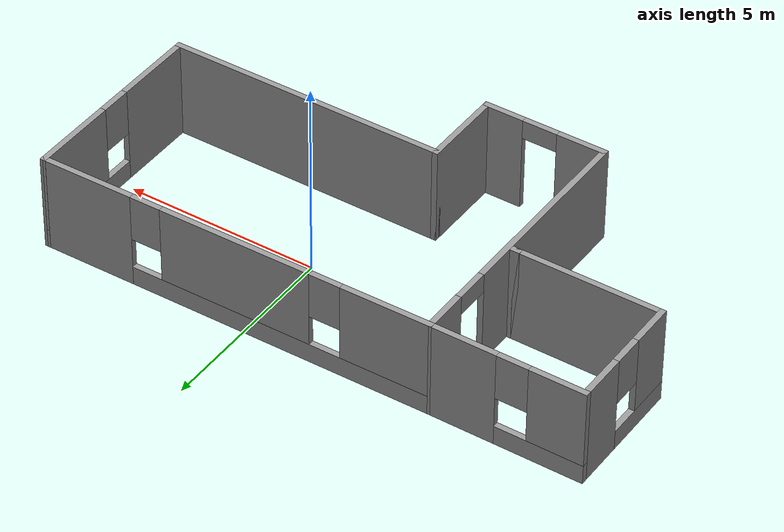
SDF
<?xml version='1.0'?>
<sdf version='1.6'>
  <model name='House'>
    <pose frame=''>-1.63925 -0.947447 0 0 -0 0</pose>
    <link name='Wall_10'>
      <collision name='Wall_10_Collision'>
        <geometry>
          <box>
            <size>2.25 0.15 2.5</size>
          </box>
        </geometry>
        <pose frame=''>0 0 1.25 0 -0 0</pose>
      </collision>
      <visual name='Wall_10_Visual'>
        <pose frame=''>0 0 1.25 0 -0 0</pose>
        <geometry>
          <box>
            <size>2.25 0.15 2.5</size>
          </box>
        </geometry>
        <material>
          <script>
            <uri>file://media/materials/scripts/gazebo.material</uri>
            <name>Gazebo/Grey</name>
          </script>
          <ambient>1 1 1 1</ambient>
        </material>
        <meta>
          <layer>0</layer>
        </meta>
      </visual>
      <pose frame=''>-0.075367 -2.55037 0 0 -0 1.5708</pose>
    </link>
    <link name='Wall_11'>
      <collision name='Wall_11_Collision'>
        <geometry>
          <box>
            <size>7.25 0.15 2.5</size>
          </box>
        </geometry>
        <pose frame=''>0 0 1.25 0 -0 0</pose>
      </collision>
      <visual name='Wall_11_Visual'>
        <pose frame=''>0 0 1.25 0 -0 0</pose>
        <geometry>
          <box>
            <size>7.25 0.15 2.5</size>
          </box>
        </geometry>
        <material>
          <script>
            <uri>file://media/materials/scripts/gazebo.material</uri>
            <name>Gazebo/Grey</name>
          </script>
          <ambient>1 1 1 1</ambient>
        </material>
        <meta>
          <layer>0</layer>
        </meta>
      </visual>
      <pose frame=''>3.47463 -1.50037 0 0 -0 0</pose>
    </link>
    <link name='Wall_12'>
      <pose frame=''>7.02463 1.04963 0 0 -0 1.5708</pose>
      <visual name='Wall_12_Visual_0'>
        <pose frame=''>-1.51989 0 1.25 0 -0 0</pose>
        <geometry>
          <box>
            <size>2.21023 0.15 2.5</size>
          </box>
        </geometry>
        <material>
          <script>
            <uri>file://media/materials/scripts/gazebo.material</uri>
            <name>Gazebo/Grey</name>
          </script>
          <ambient>1 1 1 1</ambient>
        </material>
        <meta>
          <layer>0</layer>
        </meta>
      </visual>
      <collision name='Wall_12_Collision_0'>
        <geometry>
          <box>
            <size>2.21023 0.15 2.5</size>
          </box>
        </geometry>
        <pose frame=''>-1.51989 0 1.25 0 -0 0</pose>
      </collision>
      <visual name='Wall_12_Visual_1'>
        <pose frame=''>1.10511 0 0.25 0 -0 0</pose>
        <geometry>
          <box>
            <size>3.03977 0.15 0.5</size>
          </box>
        </geometry>
        <material>
          <script>
            <uri>file://media/materials/scripts/gazebo.material</uri>
            <name>Gazebo/Grey</name>
          </script>
          <ambient>1 1 1 1</ambient>
        </material>
        <meta>
          <layer>0</layer>
        </meta>
      </visual>
      <collision name='Wall_12_Collision_1'>
        <geometry>
          <box>
            <size>3.03977 0.15 0.5</size>
          </box>
        </geometry>
        <pose frame=''>1.10511 0 0.25 0 -0 0</pose>
      </collision>
      <visual name='Wall_12_Visual_2'>
        <pose frame=''>1.50511 0 1.5 0 -0 0</pose>
        <geometry>
          <box>
            <size>2.23977 0.15 2</size>
          </box>
        </geometry>
        <material>
          <script>
            <uri>file://media/materials/scripts/gazebo.material</uri>
            <name>Gazebo/Grey</name>
          </script>
          <ambient>1 1 1 1</ambient>
        </material>
        <meta>
          <layer>0</layer>
        </meta>
      </visual>
      <collision name='Wall_12_Collision_2'>
        <geometry>
          <box>
            <size>2.23977 0.15 2</size>
          </box>
        </geometry>
        <pose frame=''>1.50511 0 1.5 0 -0 0</pose>
      </collision>
      <visual name='Wall_12_Visual_3'>
        <pose frame=''>-0.014772 0 1.9 0 -0 0</pose>
        <geometry>
          <box>
            <size>0.8 0.15 1.2</size>
          </box>
        </geometry>
        <material>
          <script>
            <uri>file://media/materials/scripts/gazebo.material</uri>
            <name>Gazebo/Grey</name>
          </script>
          <ambient>1 1 1 1</ambient>
        </material>
        <meta>
          <layer>0</layer>
        </meta>
      </visual>
      <collision name='Wall_12_Collision_3'>
        <geometry>
          <box>
            <size>0.8 0.15 1.2</size>
          </box>
        </geometry>
        <pose frame=''>-0.014772 0 1.9 0 -0 0</pose>
      </collision>
    </link>
    <link name='Wall_13'>
      <pose frame=''>1.92463 3.54963 0 0 0 -3.13179</pose>
      <visual name='Wall_13_Visual_0'>
        <pose frame=''>-3.9405 0 1.25 0 -0 0</pose>
        <geometry>
          <box>
            <size>2.46948 0.15 2.5</size>
          </box>
        </geometry>
        <material>
          <script>
            <uri>file://media/materials/scripts/gazebo.material</uri>
            <name>Gazebo/Grey</name>
          </script>
          <ambient>1 1 1 1</ambient>
        </material>
        <meta>
          <layer>0</layer>
        </meta>
      </visual>
      <collision name='Wall_13_Collision_0'>
        <geometry>
          <box>
            <size>2.46948 0.15 2.5</size>
          </box>
        </geometry>
        <pose frame=''>-3.9405 0 1.25 0 -0 0</pose>
      </collision>
      <visual name='Wall_13_Visual_1'>
        <pose frame=''>1.23474 0 0.25 0 -0 0</pose>
        <geometry>
          <box>
            <size>7.88101 0.15 0.5</size>
          </box>
        </geometry>
        <material>
          <script>
            <uri>file://media/materials/scripts/gazebo.material</uri>
            <name>Gazebo/Grey</name>
          </script>
          <ambient>1 1 1 1</ambient>
        </material>
        <meta>
          <layer>0</layer>
        </meta>
      </visual>
      <collision name='Wall_13_Collision_1'>
        <geometry>
          <box>
            <size>7.88101 0.15 0.5</size>
          </box>
        </geometry>
        <pose frame=''>1.23474 0 0.25 0 -0 0</pose>
      </collision>
      <visual name='Wall_13_Visual_2'>
        <pose frame=''>0.068692 0 1.5 0 -0 0</pose>
        <geometry>
          <box>
            <size>3.9489 0.15 2</size>
          </box>
        </geometry>
        <material>
          <script>
            <uri>file://media/materials/scripts/gazebo.material</uri>
            <name>Gazebo/Grey</name>
          </script>
          <ambient>1 1 1 1</ambient>
        </material>
        <meta>
          <layer>0</layer>
        </meta>
      </visual>
      <collision name='Wall_13_Collision_2'>
        <geometry>
          <box>
            <size>3.9489 0.15 2</size>
          </box>
        </geometry>
        <pose frame=''>0.068692 0 1.5 0 -0 0</pose>
      </collision>
      <visual name='Wall_13_Visual_3'>
        <pose frame=''>4.0092 0 1.5 0 -0 0</pose>
        <geometry>
          <box>
            <size>2.3321 0.15 2</size>
          </box>
        </geometry>
        <material>
          <script>
            <uri>file://media/materials/scripts/gazebo.material</uri>
            <name>Gazebo/Grey</name>
          </script>
          <ambient>1 1 1 1</ambient>
        </material>
        <meta>
          <layer>0</layer>
        </meta>
      </visual>
      <collision name='Wall_13_Collision_3'>
        <geometry>
          <box>
            <size>2.3321 0.15 2</size>
          </box>
        </geometry>
        <pose frame=''>4.0092 0 1.5 0 -0 0</pose>
      </collision>
      <visual name='Wall_13_Visual_4'>
        <pose frame=''>-2.30576 0 1.9 0 -0 0</pose>
        <geometry>
          <box>
            <size>0.8 0.15 1.2</size>
          </box>
        </geometry>
        <material>
          <script>
            <uri>file://media/materials/scripts/gazebo.material</uri>
            <name>Gazebo/Grey</name>
          </script>
          <ambient>1 1 1 1</ambient>
        </material>
        <meta>
          <layer>0</layer>
        </meta>
      </visual>
      <collision name='Wall_13_Collision_4'>
        <geometry>
          <box>
            <size>0.8 0.15 1.2</size>
          </box>
        </geometry>
        <pose frame=''>-2.30576 0 1.9 0 -0 0</pose>
      </collision>
      <visual name='Wall_13_Visual_5'>
        <pose frame=''>2.44314 0 1.9 0 -0 0</pose>
        <geometry>
          <box>
            <size>0.8 0.15 1.2</size>
          </box>
        </geometry>
        <material>
          <script>
            <uri>file://media/materials/scripts/gazebo.material</uri>
            <name>Gazebo/Grey</name>
          </script>
          <ambient>1 1 1 1</ambient>
        </material>
        <meta>
          <layer>0</layer>
        </meta>
      </visual>
      <collision name='Wall_13_Collision_5'>
        <geometry>
          <box>
            <size>0.8 0.15 1.2</size>
          </box>
        </geometry>
        <pose frame=''>2.44314 0 1.9 0 -0 0</pose>
      </collision>
    </link>
    <link name='Wall_14'>
      <pose frame=''>-5.10037 3.49963 0 0 -0 3.14159</pose>
      <visual name='Wall_14_Visual_0'>
        <pose frame=''>-1.11622 0 1.25 0 -0 0</pose>
        <geometry>
          <box>
            <size>1.76756 0.15 2.5</size>
          </box>
        </geometry>
        <material>
          <script>
            <uri>file://media/materials/scripts/gazebo.material</uri>
            <name>Gazebo/Grey</name>
          </script>
          <ambient>1 1 1 1</ambient>
        </material>
        <meta>
          <layer>0</layer>
        </meta>
      </visual>
      <collision name='Wall_14_Collision_0'>
        <geometry>
          <box>
            <size>1.76756 0.15 2.5</size>
          </box>
        </geometry>
        <pose frame=''>-1.11622 0 1.25 0 -0 0</pose>
      </collision>
      <visual name='Wall_14_Visual_1'>
        <pose frame=''>0.883779 0 0.25 0 -0 0</pose>
        <geometry>
          <box>
            <size>2.23244 0.15 0.5</size>
          </box>
        </geometry>
        <material>
          <script>
            <uri>file://media/materials/scripts/gazebo.material</uri>
            <name>Gazebo/Grey</name>
          </script>
          <ambient>1 1 1 1</ambient>
        </material>
        <meta>
          <layer>0</layer>
        </meta>
      </visual>
      <collision name='Wall_14_Collision_1'>
        <geometry>
          <box>
            <size>2.23244 0.15 0.5</size>
          </box>
        </geometry>
        <pose frame=''>0.883779 0 0.25 0 -0 0</pose>
      </collision>
      <visual name='Wall_14_Visual_2'>
        <pose frame=''>1.28378 0 1.5 0 -0 0</pose>
        <geometry>
          <box>
            <size>1.43244 0.15 2</size>
          </box>
        </geometry>
        <material>
          <script>
            <uri>file://media/materials/scripts/gazebo.material</uri>
            <name>Gazebo/Grey</name>
          </script>
          <ambient>1 1 1 1</ambient>
        </material>
        <meta>
          <layer>0</layer>
        </meta>
      </visual>
      <collision name='Wall_14_Collision_2'>
        <geometry>
          <box>
            <size>1.43244 0.15 2</size>
          </box>
        </geometry>
        <pose frame=''>1.28378 0 1.5 0 -0 0</pose>
      </collision>
      <visual name='Wall_14_Visual_3'>
        <pose frame=''>0.167557 0 1.9 0 -0 0</pose>
        <geometry>
          <box>
            <size>0.8 0.15 1.2</size>
          </box>
        </geometry>
        <material>
          <script>
            <uri>file://media/materials/scripts/gazebo.material</uri>
            <name>Gazebo/Grey</name>
          </script>
          <ambient>1 1 1 1</ambient>
        </material>
        <meta>
          <layer>0</layer>
        </meta>
      </visual>
      <collision name='Wall_14_Collision_3'>
        <geometry>
          <box>
            <size>0.8 0.15 1.2</size>
          </box>
        </geometry>
        <pose frame=''>0.167557 0 1.9 0 -0 0</pose>
      </collision>
    </link>
    <link name='Wall_15'>
      <pose frame=''>-7.02537 1.94963 0 0 0 -1.5708</pose>
      <visual name='Wall_15_Visual_0'>
        <pose frame=''>-0.976509 0 1.25 0 -0 0</pose>
        <geometry>
          <box>
            <size>1.29698 0.15 2.5</size>
          </box>
        </geometry>
        <material>
          <script>
            <uri>file://media/materials/scripts/gazebo.material</uri>
            <name>Gazebo/Grey</name>
          </script>
          <ambient>1 1 1 1</ambient>
        </material>
        <meta>
          <layer>0</layer>
        </meta>
      </visual>
      <collision name='Wall_15_Collision_0'>
        <geometry>
          <box>
            <size>1.29698 0.15 2.5</size>
          </box>
        </geometry>
        <pose frame=''>-0.976509 0 1.25 0 -0 0</pose>
      </collision>
      <visual name='Wall_15_Visual_1'>
        <pose frame=''>0.648491 0 0.25 0 -0 0</pose>
        <geometry>
          <box>
            <size>1.95302 0.15 0.5</size>
          </box>
        </geometry>
        <material>
          <script>
            <uri>file://media/materials/scripts/gazebo.material</uri>
            <name>Gazebo/Grey</name>
          </script>
          <ambient>1 1 1 1</ambient>
        </material>
        <meta>
          <layer>0</layer>
        </meta>
      </visual>
      <collision name='Wall_15_Collision_1'>
        <geometry>
          <box>
            <size>1.95302 0.15 0.5</size>
          </box>
        </geometry>
        <pose frame=''>0.648491 0 0.25 0 -0 0</pose>
      </collision>
      <visual name='Wall_15_Visual_2'>
        <pose frame=''>1.04849 0 1.5 0 -0 0</pose>
        <geometry>
          <box>
            <size>1.15302 0.15 2</size>
          </box>
        </geometry>
        <material>
          <script>
            <uri>file://media/materials/scripts/gazebo.material</uri>
            <name>Gazebo/Grey</name>
          </script>
          <ambient>1 1 1 1</ambient>
        </material>
        <meta>
          <layer>0</layer>
        </meta>
      </visual>
      <collision name='Wall_15_Collision_2'>
        <geometry>
          <box>
            <size>1.15302 0.15 2</size>
          </box>
        </geometry>
        <pose frame=''>1.04849 0 1.5 0 -0 0</pose>
      </collision>
      <visual name='Wall_15_Visual_3'>
        <pose frame=''>0.071982 0 1.9 0 -0 0</pose>
        <geometry>
          <box>
            <size>0.8 0.15 1.2</size>
          </box>
        </geometry>
        <material>
          <script>
            <uri>file://media/materials/scripts/gazebo.material</uri>
            <name>Gazebo/Grey</name>
          </script>
          <ambient>1 1 1 1</ambient>
        </material>
        <meta>
          <layer>0</layer>
        </meta>
      </visual>
      <collision name='Wall_15_Collision_3'>
        <geometry>
          <box>
            <size>0.8 0.15 1.2</size>
          </box>
        </geometry>
        <pose frame=''>0.071982 0 1.9 0 -0 0</pose>
      </collision>
    </link>
    <link name='Wall_16'>
      <collision name='Wall_16_Collision'>
        <geometry>
          <box>
            <size>3.75 0.15 2.5</size>
          </box>
        </geometry>
        <pose frame=''>0 0 1.25 0 -0 0</pose>
      </collision>
      <visual name='Wall_16_Visual'>
        <pose frame=''>0 0 1.25 0 -0 0</pose>
        <geometry>
          <box>
            <size>3.75 0.15 2.5</size>
          </box>
        </geometry>
        <material>
          <script>
            <uri>file://media/materials/scripts/gazebo.material</uri>
            <name>Gazebo/Grey</name>
          </script>
          <ambient>1 1 1 1</ambient>
        </material>
        <meta>
          <layer>0</layer>
        </meta>
      </visual>
      <pose frame=''>-5.22537 0.399634 0 0 -0 0</pose>
    </link>
    <link name='Wall_17'>
      <collision name='Wall_17_Collision'>
        <geometry>
          <box>
            <size>0.15 0.15 2.5</size>
          </box>
        </geometry>
        <pose frame=''>0 0 1.25 0 -0 0</pose>
      </collision>
      <visual name='Wall_17_Visual'>
        <pose frame=''>0 0 1.25 0 -0 0</pose>
        <geometry>
          <box>
            <size>0.15 0.15 2.5</size>
          </box>
        </geometry>
        <material>
          <script>
            <uri>file://media/materials/scripts/gazebo.material</uri>
            <name>Gazebo/Grey</name>
          </script>
          <ambient>1 1 1 1</ambient>
        </material>
        <meta>
          <layer>0</layer>
        </meta>
      </visual>
      <pose frame=''>-3.42537 0.399634 0 0 -0 0</pose>
    </link>
    <link name='Wall_18'>
      <collision name='Wall_18_Collision'>
        <geometry>
          <box>
            <size>0.25 0.15 2.5</size>
          </box>
        </geometry>
        <pose frame=''>0 0 1.25 0 -0 0</pose>
      </collision>
      <visual name='Wall_18_Visual'>
        <pose frame=''>0 0 1.25 0 -0 0</pose>
        <geometry>
          <box>
            <size>0.25 0.15 2.5</size>
          </box>
        </geometry>
        <material>
          <script>
            <uri>file://media/materials/scripts/gazebo.material</uri>
            <name>Gazebo/Grey</name>
          </script>
          <ambient>1 1 1 1</ambient>
        </material>
        <meta>
          <layer>0</layer>
        </meta>
      </visual>
      <pose frame=''>-3.37537 0.399634 0 0 -0 0</pose>
    </link>
    <link name='Wall_5'>
      <pose frame=''>-3.17537 -0.050366 0 0 0 -1.5708</pose>
      <visual name='Wall_5_Visual_0'>
        <pose frame=''>-3.03669 0 1.25 0 -0 0</pose>
        <geometry>
          <box>
            <size>1.17662 0.15 2.5</size>
          </box>
        </geometry>
        <material>
          <script>
            <uri>file://media/materials/scripts/gazebo.material</uri>
            <name>Gazebo/Grey</name>
          </script>
          <ambient>1 1 1 1</ambient>
        </material>
        <meta>
          <layer>0</layer>
        </meta>
      </visual>
      <collision name='Wall_5_Collision_0'>
        <geometry>
          <box>
            <size>1.17662 0.15 2.5</size>
          </box>
        </geometry>
        <pose frame=''>-3.03669 0 1.25 0 -0 0</pose>
      </collision>
      <visual name='Wall_5_Visual_1'>
        <pose frame=''>1.03831 0 1.25 0 -0 0</pose>
        <geometry>
          <box>
            <size>5.17338 0.15 2.5</size>
          </box>
        </geometry>
        <material>
          <script>
            <uri>file://media/materials/scripts/gazebo.material</uri>
            <name>Gazebo/Grey</name>
          </script>
          <ambient>1 1 1 1</ambient>
        </material>
        <meta>
          <layer>0</layer>
        </meta>
      </visual>
      <collision name='Wall_5_Collision_1'>
        <geometry>
          <box>
            <size>5.17338 0.15 2.5</size>
          </box>
        </geometry>
        <pose frame=''>1.03831 0 1.25 0 -0 0</pose>
      </collision>
      <visual name='Wall_5_Visual_2'>
        <pose frame=''>-1.99838 0 2.25 0 -0 0</pose>
        <geometry>
          <box>
            <size>0.9 0.15 0.5</size>
          </box>
        </geometry>
        <material>
          <script>
            <uri>file://media/materials/scripts/gazebo.material</uri>
            <name>Gazebo/Grey</name>
          </script>
          <ambient>1 1 1 1</ambient>
        </material>
        <meta>
          <layer>0</layer>
        </meta>
      </visual>
      <collision name='Wall_5_Collision_2'>
        <geometry>
          <box>
            <size>0.9 0.15 0.5</size>
          </box>
        </geometry>
        <pose frame=''>-1.99838 0 2.25 0 -0 0</pose>
      </collision>
    </link>
    <link name='Wall_6'>
      <pose frame=''>-1.62537 -3.60037 0 0 -0 0</pose>
      <visual name='Wall_6_Visual_0'>
        <pose frame=''>-0.986875 0 1.25 0 -0 0</pose>
        <geometry>
          <box>
            <size>1.27625 0.15 2.5</size>
          </box>
        </geometry>
        <material>
          <script>
            <uri>file://media/materials/scripts/gazebo.material</uri>
            <name>Gazebo/Grey</name>
          </script>
          <ambient>1 1 1 1</ambient>
        </material>
        <meta>
          <layer>0</layer>
        </meta>
      </visual>
      <collision name='Wall_6_Collision_0'>
        <geometry>
          <box>
            <size>1.27625 0.15 2.5</size>
          </box>
        </geometry>
        <pose frame=''>-0.986875 0 1.25 0 -0 0</pose>
      </collision>
      <visual name='Wall_6_Visual_1'>
        <pose frame=''>1.08813 0 1.25 0 -0 0</pose>
        <geometry>
          <box>
            <size>1.07375 0.15 2.5</size>
          </box>
        </geometry>
        <material>
          <script>
            <uri>file://media/materials/scripts/gazebo.material</uri>
            <name>Gazebo/Grey</name>
          </script>
          <ambient>1 1 1 1</ambient>
        </material>
        <meta>
          <layer>0</layer>
        </meta>
      </visual>
      <collision name='Wall_6_Collision_1'>
        <geometry>
          <box>
            <size>1.07375 0.15 2.5</size>
          </box>
        </geometry>
        <pose frame=''>1.08813 0 1.25 0 -0 0</pose>
      </collision>
      <visual name='Wall_6_Visual_2'>
        <pose frame=''>0.101249 0 2.25 0 -0 0</pose>
        <geometry>
          <box>
            <size>0.9 0.15 0.5</size>
          </box>
        </geometry>
        <material>
          <script>
            <uri>file://media/materials/scripts/gazebo.material</uri>
            <name>Gazebo/Grey</name>
          </script>
          <ambient>1 1 1 1</ambient>
        </material>
        <meta>
          <layer>0</layer>
        </meta>
      </visual>
      <collision name='Wall_6_Collision_2'>
        <geometry>
          <box>
            <size>0.9 0.15 0.5</size>
          </box>
        </geometry>
        <pose frame=''>0.101249 0 2.25 0 -0 0</pose>
      </collision>
    </link>
    <static>1</static>
  </model>
</sdf>
